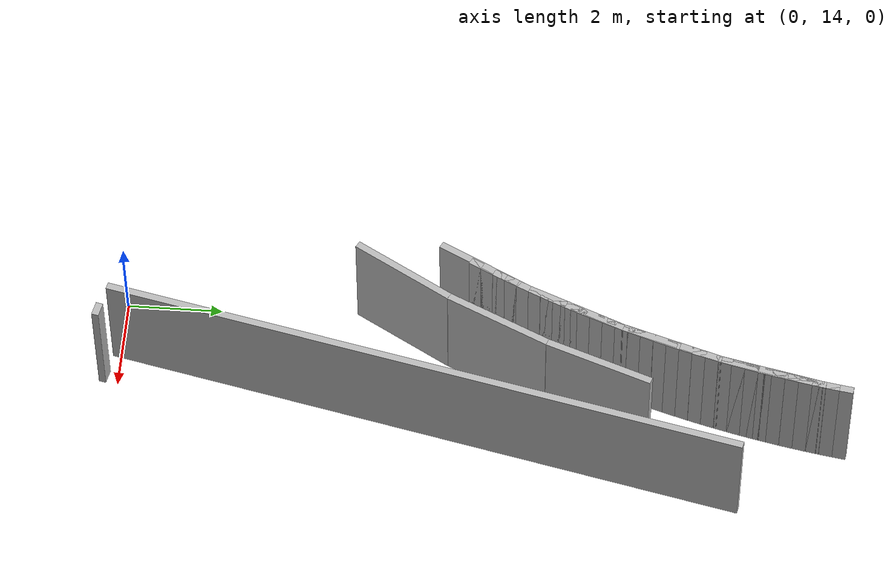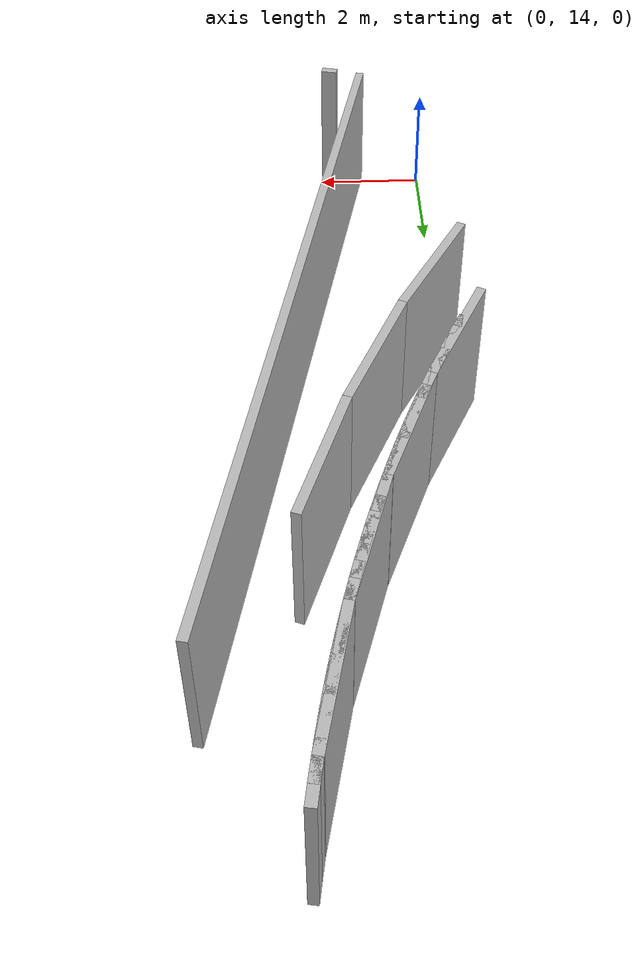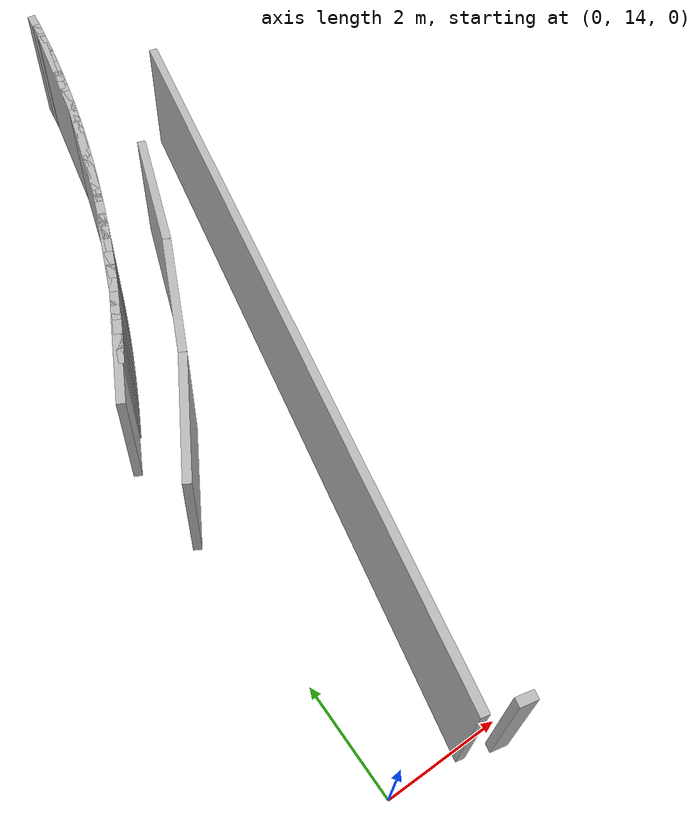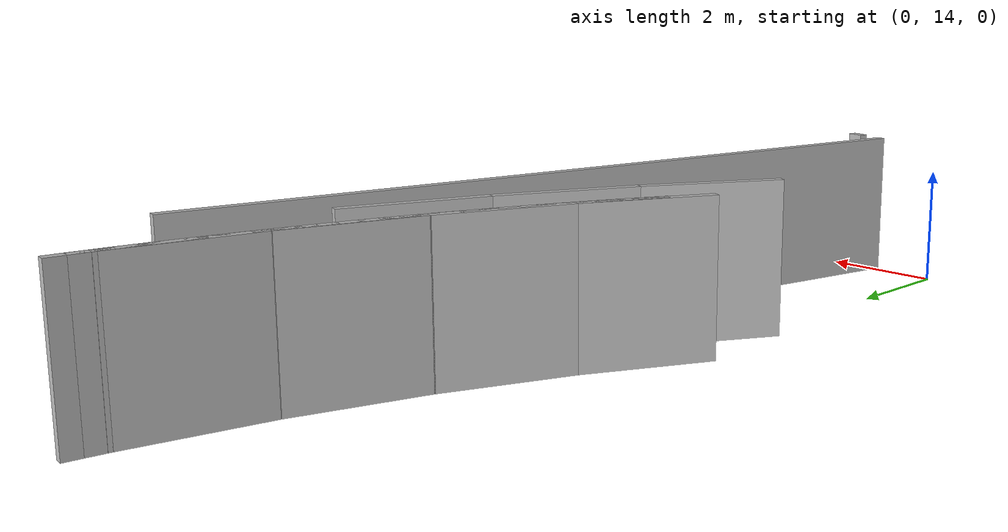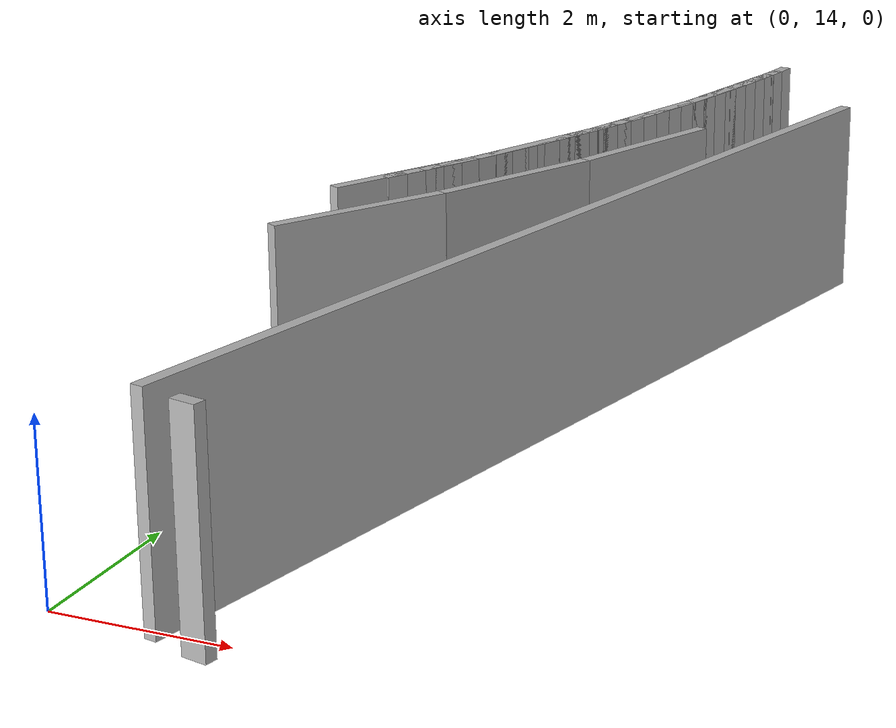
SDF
<sdf version="1.6">
 <model name="sps_2404">
  <static>1</static>
  <allow_auto_disable>0</allow_auto_disable>
  <link name="Wall2082">
   <collision name="collision"><geometry><box><size>0.299831 0.15 2.5</size></box></geometry></collision>
   <visual name="visual">
    <geometry><box><size>0.299831 0.15 2.5</size></box></geometry>
    <transparency>0.0</transparency>
   </visual>
   <pose>1.82156 13.711 1.25 0 0 -0.214363</pose>
  </link>
  <link name="Wall2404">
   <collision name="collision"><geometry><box><size>13.5967 0.15 2.5</size></box></geometry></collision>
   <visual name="visual">
    <geometry><box><size>13.5967 0.15 2.5</size></box></geometry>
    <transparency>0.0</transparency>
   </visual>
   <pose>2.66747 20.4844 1.25 0 0 -1.78507</pose>
  </link>
  <link name="Wall7775">
   <collision name="collision"><geometry><box><size>0.282444 0.15 2.5</size></box></geometry></collision>
   <visual name="visual">
    <geometry><box><size>0.282444 0.15 2.5</size></box></geometry>
    <transparency>0.0</transparency>
   </visual>
   <pose>2.60146 29.1647 1.25 0 0 -1.72308</pose>
  </link>
  <link name="Wall7776">
   <collision name="collision"><geometry><box><size>0.282361 0.15 2.5</size></box></geometry></collision>
   <visual name="visual">
    <geometry><box><size>0.282361 0.15 2.5</size></box></geometry>
    <transparency>0.0</transparency>
   </visual>
   <pose>2.55715 28.8858 1.25 0 0 -1.73364</pose>
  </link>
  <link name="Wall7777">
   <collision name="collision"><geometry><box><size>0.282483 0.15 2.5</size></box></geometry></collision>
   <visual name="visual">
    <geometry><box><size>0.282483 0.15 2.5</size></box></geometry>
    <transparency>0.0</transparency>
   </visual>
   <pose>2.50976 28.6074 1.25 0 0 -1.74518</pose>
  </link>
  <link name="Wall7778">
   <collision name="collision"><geometry><box><size>0.282417 0.15 2.5</size></box></geometry></collision>
   <visual name="visual">
    <geometry><box><size>0.282417 0.15 2.5</size></box></geometry>
    <transparency>0.0</transparency>
   </visual>
   <pose>2.45925 28.3295 1.25 0 0 -1.75598</pose>
  </link>
  <link name="Wall7779">
   <collision name="collision"><geometry><box><size>0.28242 0.15 2.5</size></box></geometry></collision>
   <visual name="visual">
    <geometry><box><size>0.28242 0.15 2.5</size></box></geometry>
    <transparency>0.0</transparency>
   </visual>
   <pose>2.40566 28.0522 1.25 0 0 -1.76743</pose>
  </link>
  <link name="Wall7780">
   <collision name="collision"><geometry><box><size>0.282315 0.15 2.5</size></box></geometry></collision>
   <visual name="visual">
    <geometry><box><size>0.282315 0.15 2.5</size></box></geometry>
    <transparency>0.0</transparency>
   </visual>
   <pose>2.34896 27.7756 1.25 0 0 -1.77854</pose>
  </link>
  <link name="Wall7781">
   <collision name="collision"><geometry><box><size>0.282331 0.15 2.5</size></box></geometry></collision>
   <visual name="visual">
    <geometry><box><size>0.282331 0.15 2.5</size></box></geometry>
    <transparency>0.0</transparency>
   </visual>
   <pose>2.28915 27.4997 1.25 0 0 -1.79003</pose>
  </link>
  <link name="Wall7782">
   <collision name="collision"><geometry><box><size>0.282266 0.15 2.5</size></box></geometry></collision>
   <visual name="visual">
    <geometry><box><size>0.282266 0.15 2.5</size></box></geometry>
    <transparency>0.0</transparency>
   </visual>
   <pose>2.22616 27.2245 1.25 0 0 -1.80161</pose>
  </link>
  <link name="Wall7783">
   <collision name="collision"><geometry><box><size>0.282446 0.15 2.5</size></box></geometry></collision>
   <visual name="visual">
    <geometry><box><size>0.282446 0.15 2.5</size></box></geometry>
    <transparency>0.0</transparency>
   </visual>
   <pose>2.16006 26.95 1.25 0 0 -1.81258</pose>
  </link>
  <link name="Wall7784">
   <collision name="collision"><geometry><box><size>0.282396 0.15 2.5</size></box></geometry></collision>
   <visual name="visual">
    <geometry><box><size>0.282396 0.15 2.5</size></box></geometry>
    <transparency>0.0</transparency>
   </visual>
   <pose>2.09084 26.6762 1.25 0 0 -1.82421</pose>
  </link>
  <link name="Wall7785">
   <collision name="collision"><geometry><box><size>0.282395 0.15 2.5</size></box></geometry></collision>
   <visual name="visual">
    <geometry><box><size>0.282395 0.15 2.5</size></box></geometry>
    <transparency>0.0</transparency>
   </visual>
   <pose>2.01855 26.4032 1.25 0 0 -1.83517</pose>
  </link>
  <link name="Wall7786">
   <collision name="collision"><geometry><box><size>0.282367 0.15 2.5</size></box></geometry></collision>
   <visual name="visual">
    <geometry><box><size>0.282367 0.15 2.5</size></box></geometry>
    <transparency>0.0</transparency>
   </visual>
   <pose>1.94305 26.1311 1.25 0 0 -1.84776</pose>
  </link>
  <link name="Wall7787">
   <collision name="collision"><geometry><box><size>0.28237 0.15 2.5</size></box></geometry></collision>
   <visual name="visual">
    <geometry><box><size>0.28237 0.15 2.5</size></box></geometry>
    <transparency>0.0</transparency>
   </visual>
   <pose>1.86446 25.8599 1.25 0 0 -1.85788</pose>
  </link>
  <link name="Wall7788">
   <collision name="collision"><geometry><box><size>0.282315 0.15 2.5</size></box></geometry></collision>
   <visual name="visual">
    <geometry><box><size>0.282315 0.15 2.5</size></box></geometry>
    <transparency>0.0</transparency>
   </visual>
   <pose>1.78298 25.5896 1.25 0 0 -1.86923</pose>
  </link>
  <link name="Wall7789">
   <collision name="collision"><geometry><box><size>0.282395 0.15 2.5</size></box></geometry></collision>
   <visual name="visual">
    <geometry><box><size>0.282395 0.15 2.5</size></box></geometry>
    <transparency>0.0</transparency>
   </visual>
   <pose>1.69848 25.3202 1.25 0 0 -1.88024</pose>
  </link>
  <link name="Wall7790">
   <collision name="collision"><geometry><box><size>0.282413 0.15 2.5</size></box></geometry></collision>
   <visual name="visual">
    <geometry><box><size>0.282413 0.15 2.5</size></box></geometry>
    <transparency>0.0</transparency>
   </visual>
   <pose>1.61095 25.0517 1.25 0 0 -1.89159</pose>
  </link>
  <link name="Wall7791">
   <collision name="collision"><geometry><box><size>0.282428 0.15 2.5</size></box></geometry></collision>
   <visual name="visual">
    <geometry><box><size>0.282428 0.15 2.5</size></box></geometry>
    <transparency>0.0</transparency>
   </visual>
   <pose>1.52035 24.7842 1.25 0 0 -1.90321</pose>
  </link>
  <link name="Wall7792">
   <collision name="collision"><geometry><box><size>0.282285 0.15 2.5</size></box></geometry></collision>
   <visual name="visual">
    <geometry><box><size>0.282285 0.15 2.5</size></box></geometry>
    <transparency>0.0</transparency>
   </visual>
   <pose>1.42675 24.5178 1.25 0 0 -1.91415</pose>
  </link>
  <link name="Wall7793">
   <collision name="collision"><geometry><box><size>0.282454 0.15 2.5</size></box></geometry></collision>
   <visual name="visual">
    <geometry><box><size>0.282454 0.15 2.5</size></box></geometry>
    <transparency>0.0</transparency>
   </visual>
   <pose>1.33013 24.2525 1.25 0 0 -1.9259</pose>
  </link>
  <link name="Wall7794">
   <collision name="collision"><geometry><box><size>0.28231 0.15 2.5</size></box></geometry></collision>
   <visual name="visual">
    <geometry><box><size>0.28231 0.15 2.5</size></box></geometry>
    <transparency>0.0</transparency>
   </visual>
   <pose>1.23043 23.9883 1.25 0 0 -1.93741</pose>
  </link>
  <link name="Wall7795">
   <collision name="collision"><geometry><box><size>0.282478 0.15 2.5</size></box></geometry></collision>
   <visual name="visual">
    <geometry><box><size>0.282478 0.15 2.5</size></box></geometry>
    <transparency>0.0</transparency>
   </visual>
   <pose>1.12783 23.7252 1.25 0 0 -1.94785</pose>
  </link>
  <link name="Wall7796">
   <collision name="collision"><geometry><box><size>0.282236 0.15 2.5</size></box></geometry></collision>
   <visual name="visual">
    <geometry><box><size>0.282236 0.15 2.5</size></box></geometry>
    <transparency>0.0</transparency>
   </visual>
   <pose>1.02233 23.4633 1.25 0 0 -1.95962</pose>
  </link>
  <link name="Wall7797">
   <collision name="collision"><geometry><box><size>0.282315 0.15 2.5</size></box></geometry></collision>
   <visual name="visual">
    <geometry><box><size>0.282315 0.15 2.5</size></box></geometry>
    <transparency>0.0</transparency>
   </visual>
   <pose>0.913841 23.2027 1.25 0 0 -1.97098</pose>
  </link>
  <link name="Wall7798">
   <collision name="collision"><geometry><box><size>0.282375 0.15 2.5</size></box></geometry></collision>
   <visual name="visual">
    <geometry><box><size>0.282375 0.15 2.5</size></box></geometry>
    <transparency>0.0</transparency>
   </visual>
   <pose>0.80236 22.9433 1.25 0 0 -1.98241</pose>
  </link>
  <link name="Wall7799">
   <collision name="collision"><geometry><box><size>0.282552 0.15 2.5</size></box></geometry></collision>
   <visual name="visual">
    <geometry><box><size>0.282552 0.15 2.5</size></box></geometry>
    <transparency>0.0</transparency>
   </visual>
   <pose>0.687858 22.6851 1.25 0 0 -1.99396</pose>
  </link>
  <link name="Wall7800">
   <collision name="collision"><geometry><box><size>0.282339 0.15 2.5</size></box></geometry></collision>
   <visual name="visual">
    <geometry><box><size>0.282339 0.15 2.5</size></box></geometry>
    <transparency>0.0</transparency>
   </visual>
   <pose>0.570548 22.4282 1.25 0 0 -2.00428</pose>
  </link>
  <link name="Wall7801">
   <collision name="collision"><geometry><box><size>0.282556 0.15 2.5</size></box></geometry></collision>
   <visual name="visual">
    <geometry><box><size>0.282556 0.15 2.5</size></box></geometry>
    <transparency>0.0</transparency>
   </visual>
   <pose>0.45034 22.1726 1.25 0 0 -2.01657</pose>
  </link>
  <link name="Wall7802">
   <collision name="collision"><geometry><box><size>0.2823 0.15 2.5</size></box></geometry></collision>
   <visual name="visual">
    <geometry><box><size>0.2823 0.15 2.5</size></box></geometry>
    <transparency>0.0</transparency>
   </visual>
   <pose>0.327232 21.9184 1.25 0 0 -2.0271</pose>
  </link>
  <link name="Wall7803">
   <collision name="collision"><geometry><box><size>0.282377 0.15 2.5</size></box></geometry></collision>
   <visual name="visual">
    <geometry><box><size>0.282377 0.15 2.5</size></box></geometry>
    <transparency>0.0</transparency>
   </visual>
   <pose>0.201347 21.6657 1.25 0 0 -2.03879</pose>
  </link>
  <link name="Wall7804">
   <collision name="collision"><geometry><box><size>0.282408 0.15 2.5</size></box></geometry></collision>
   <visual name="visual">
    <geometry><box><size>0.282408 0.15 2.5</size></box></geometry>
    <transparency>0.0</transparency>
   </visual>
   <pose>0.0725625 21.4144 1.25 0 0 -2.04991</pose>
  </link>
  <link name="Wall9496">
   <collision name="collision"><geometry><box><size>1.00887 0.15 2.5</size></box></geometry></collision>
   <visual name="visual">
    <geometry><box><size>1.00887 0.15 2.5</size></box></geometry>
    <transparency>0.0</transparency>
   </visual>
   <pose>2.38506 27.9739 1.25 0 -0 1.37085</pose>
  </link>
  <link name="Wall16885">
   <collision name="collision"><geometry><box><size>2.31533 0.15 2.5</size></box></geometry></collision>
   <visual name="visual">
    <geometry><box><size>2.31533 0.15 2.5</size></box></geometry>
    <transparency>0.0</transparency>
   </visual>
   <pose>0.357749 19.91 1.25 0 -0 1.04535</pose>
  </link>
  <link name="Wall16886">
   <collision name="collision"><geometry><box><size>2.31545 0.15 2.5</size></box></geometry></collision>
   <visual name="visual">
    <geometry><box><size>2.31545 0.15 2.5</size></box></geometry>
    <transparency>0.0</transparency>
   </visual>
   <pose>1.42785 21.9607 1.25 0 -0 1.13434</pose>
  </link>
  <link name="Wall16887">
   <collision name="collision"><geometry><box><size>2.3153 0.15 2.5</size></box></geometry></collision>
   <visual name="visual">
    <geometry><box><size>2.3153 0.15 2.5</size></box></geometry>
    <transparency>0.0</transparency>
   </visual>
   <pose>2.31136 24.0984 1.25 0 -0 1.22342</pose>
  </link>
  <link name="Wall32332">
   <collision name="collision"><geometry><box><size>0.282408 0.15 2.5</size></box></geometry></collision>
   <visual name="visual">
    <geometry><box><size>0.282408 0.15 2.5</size></box></geometry>
    <transparency>0.0</transparency>
   </visual>
   <pose>0.0725625 21.4144 1.25 0 -0 1.09168</pose>
  </link>
  <link name="Wall32333">
   <collision name="collision"><geometry><box><size>0.282377 0.15 2.5</size></box></geometry></collision>
   <visual name="visual">
    <geometry><box><size>0.282377 0.15 2.5</size></box></geometry>
    <transparency>0.0</transparency>
   </visual>
   <pose>0.201347 21.6657 1.25 0 -0 1.1028</pose>
  </link>
  <link name="Wall32334">
   <collision name="collision"><geometry><box><size>0.2823 0.15 2.5</size></box></geometry></collision>
   <visual name="visual">
    <geometry><box><size>0.2823 0.15 2.5</size></box></geometry>
    <transparency>0.0</transparency>
   </visual>
   <pose>0.327232 21.9184 1.25 0 -0 1.1145</pose>
  </link>
  <link name="Wall32335">
   <collision name="collision"><geometry><box><size>0.282556 0.15 2.5</size></box></geometry></collision>
   <visual name="visual">
    <geometry><box><size>0.282556 0.15 2.5</size></box></geometry>
    <transparency>0.0</transparency>
   </visual>
   <pose>0.45034 22.1726 1.25 0 -0 1.12502</pose>
  </link>
  <link name="Wall32336">
   <collision name="collision"><geometry><box><size>0.282416 0.15 2.5</size></box></geometry></collision>
   <visual name="visual">
    <geometry><box><size>0.282416 0.15 2.5</size></box></geometry>
    <transparency>0.0</transparency>
   </visual>
   <pose>0.57064 22.4282 1.25 0 -0 1.13673</pose>
  </link>
  <link name="Wall32337">
   <collision name="collision"><geometry><box><size>0.282476 0.15 2.5</size></box></geometry></collision>
   <visual name="visual">
    <geometry><box><size>0.282476 0.15 2.5</size></box></geometry>
    <transparency>0.0</transparency>
   </visual>
   <pose>0.687949 22.6851 1.25 0 -0 1.14823</pose>
  </link>
  <link name="Wall32338">
   <collision name="collision"><geometry><box><size>0.282375 0.15 2.5</size></box></geometry></collision>
   <visual name="visual">
    <geometry><box><size>0.282375 0.15 2.5</size></box></geometry>
    <transparency>0.0</transparency>
   </visual>
   <pose>0.80236 22.9433 1.25 0 -0 1.15918</pose>
  </link>
  <link name="Wall32339">
   <collision name="collision"><geometry><box><size>0.282315 0.15 2.5</size></box></geometry></collision>
   <visual name="visual">
    <geometry><box><size>0.282315 0.15 2.5</size></box></geometry>
    <transparency>0.0</transparency>
   </visual>
   <pose>0.913841 23.2027 1.25 0 -0 1.17062</pose>
  </link>
  <link name="Wall32340">
   <collision name="collision"><geometry><box><size>0.282236 0.15 2.5</size></box></geometry></collision>
   <visual name="visual">
    <geometry><box><size>0.282236 0.15 2.5</size></box></geometry>
    <transparency>0.0</transparency>
   </visual>
   <pose>1.02233 23.4633 1.25 0 -0 1.18198</pose>
  </link>
  <link name="Wall32341">
   <collision name="collision"><geometry><box><size>0.282478 0.15 2.5</size></box></geometry></collision>
   <visual name="visual">
    <geometry><box><size>0.282478 0.15 2.5</size></box></geometry>
    <transparency>0.0</transparency>
   </visual>
   <pose>1.12783 23.7252 1.25 0 -0 1.19374</pose>
  </link>
  <link name="Wall32342">
   <collision name="collision"><geometry><box><size>0.28231 0.15 2.5</size></box></geometry></collision>
   <visual name="visual">
    <geometry><box><size>0.28231 0.15 2.5</size></box></geometry>
    <transparency>0.0</transparency>
   </visual>
   <pose>1.23043 23.9883 1.25 0 -0 1.20418</pose>
  </link>
  <link name="Wall32343">
   <collision name="collision"><geometry><box><size>0.282454 0.15 2.5</size></box></geometry></collision>
   <visual name="visual">
    <geometry><box><size>0.282454 0.15 2.5</size></box></geometry>
    <transparency>0.0</transparency>
   </visual>
   <pose>1.33013 24.2525 1.25 0 -0 1.21569</pose>
  </link>
  <link name="Wall32344">
   <collision name="collision"><geometry><box><size>0.282285 0.15 2.5</size></box></geometry></collision>
   <visual name="visual">
    <geometry><box><size>0.282285 0.15 2.5</size></box></geometry>
    <transparency>0.0</transparency>
   </visual>
   <pose>1.42675 24.5178 1.25 0 -0 1.22744</pose>
  </link>
  <link name="Wall32345">
   <collision name="collision"><geometry><box><size>0.282428 0.15 2.5</size></box></geometry></collision>
   <visual name="visual">
    <geometry><box><size>0.282428 0.15 2.5</size></box></geometry>
    <transparency>0.0</transparency>
   </visual>
   <pose>1.52035 24.7842 1.25 0 -0 1.23838</pose>
  </link>
  <link name="Wall32346">
   <collision name="collision"><geometry><box><size>0.282413 0.15 2.5</size></box></geometry></collision>
   <visual name="visual">
    <geometry><box><size>0.282413 0.15 2.5</size></box></geometry>
    <transparency>0.0</transparency>
   </visual>
   <pose>1.61095 25.0517 1.25 0 -0 1.25</pose>
  </link>
  <link name="Wall32347">
   <collision name="collision"><geometry><box><size>0.282451 0.15 2.5</size></box></geometry></collision>
   <visual name="visual">
    <geometry><box><size>0.282451 0.15 2.5</size></box></geometry>
    <transparency>0.0</transparency>
   </visual>
   <pose>1.69857 25.3202 1.25 0 -0 1.26073</pose>
  </link>
  <link name="Wall32348">
   <collision name="collision"><geometry><box><size>0.282315 0.15 2.5</size></box></geometry></collision>
   <visual name="visual">
    <geometry><box><size>0.282315 0.15 2.5</size></box></geometry>
    <transparency>0.0</transparency>
   </visual>
   <pose>1.78316 25.5896 1.25 0 -0 1.27236</pose>
  </link>
  <link name="Wall32349">
   <collision name="collision"><geometry><box><size>0.282318 0.15 2.5</size></box></geometry></collision>
   <visual name="visual">
    <geometry><box><size>0.282318 0.15 2.5</size></box></geometry>
    <transparency>0.0</transparency>
   </visual>
   <pose>1.86455 25.8599 1.25 0 -0 1.28433</pose>
  </link>
  <link name="Wall32350">
   <collision name="collision"><geometry><box><size>0.282494 0.15 2.5</size></box></geometry></collision>
   <visual name="visual">
    <geometry><box><size>0.282494 0.15 2.5</size></box></geometry>
    <transparency>0.0</transparency>
   </visual>
   <pose>1.94295 26.1312 1.25 0 -0 1.29463</pose>
  </link>
  <link name="Wall32351">
   <collision name="collision"><geometry><box><size>0.282266 0.15 2.5</size></box></geometry></collision>
   <visual name="visual">
    <geometry><box><size>0.282266 0.15 2.5</size></box></geometry>
    <transparency>0.0</transparency>
   </visual>
   <pose>2.01845 26.4033 1.25 0 -0 1.30563</pose>
  </link>
  <link name="Wall32352">
   <collision name="collision"><geometry><box><size>0.282396 0.15 2.5</size></box></geometry></collision>
   <visual name="visual">
    <geometry><box><size>0.282396 0.15 2.5</size></box></geometry>
    <transparency>0.0</transparency>
   </visual>
   <pose>2.09084 26.6762 1.25 0 -0 1.31738</pose>
  </link>
  <link name="Wall32353">
   <collision name="collision"><geometry><box><size>0.282446 0.15 2.5</size></box></geometry></collision>
   <visual name="visual">
    <geometry><box><size>0.282446 0.15 2.5</size></box></geometry>
    <transparency>0.0</transparency>
   </visual>
   <pose>2.16006 26.95 1.25 0 -0 1.32901</pose>
  </link>
  <link name="Wall32354">
   <collision name="collision"><geometry><box><size>0.282266 0.15 2.5</size></box></geometry></collision>
   <visual name="visual">
    <geometry><box><size>0.282266 0.15 2.5</size></box></geometry>
    <transparency>0.0</transparency>
   </visual>
   <pose>2.22616 27.2245 1.25 0 -0 1.33998</pose>
  </link>
  <link name="Wall32355">
   <collision name="collision"><geometry><box><size>0.282331 0.15 2.5</size></box></geometry></collision>
   <visual name="visual">
    <geometry><box><size>0.282331 0.15 2.5</size></box></geometry>
    <transparency>0.0</transparency>
   </visual>
   <pose>2.28915 27.4997 1.25 0 -0 1.35156</pose>
  </link>
  <link name="Wall32356">
   <collision name="collision"><geometry><box><size>0.282494 0.15 2.5</size></box></geometry></collision>
   <visual name="visual">
    <geometry><box><size>0.282494 0.15 2.5</size></box></geometry>
    <transparency>0.0</transparency>
   </visual>
   <pose>2.34896 27.7757 1.25 0 -0 1.36319</pose>
  </link>
  <link name="Wall32357">
   <collision name="collision"><geometry><box><size>0.28224 0.15 2.5</size></box></geometry></collision>
   <visual name="visual">
    <geometry><box><size>0.28224 0.15 2.5</size></box></geometry>
    <transparency>0.0</transparency>
   </visual>
   <pose>2.40566 28.0523 1.25 0 -0 1.37404</pose>
  </link>
  <link name="Wall32358">
   <collision name="collision"><geometry><box><size>0.282417 0.15 2.5</size></box></geometry></collision>
   <visual name="visual">
    <geometry><box><size>0.282417 0.15 2.5</size></box></geometry>
    <transparency>0.0</transparency>
   </visual>
   <pose>2.45925 28.3295 1.25 0 -0 1.38561</pose>
  </link>
  <link name="Wall32359">
   <collision name="collision"><geometry><box><size>0.282483 0.15 2.5</size></box></geometry></collision>
   <visual name="visual">
    <geometry><box><size>0.282483 0.15 2.5</size></box></geometry>
    <transparency>0.0</transparency>
   </visual>
   <pose>2.50976 28.6074 1.25 0 -0 1.39641</pose>
  </link>
  <link name="Wall32360">
   <collision name="collision"><geometry><box><size>0.282401 0.15 2.5</size></box></geometry></collision>
   <visual name="visual">
    <geometry><box><size>0.282401 0.15 2.5</size></box></geometry>
    <transparency>0.0</transparency>
   </visual>
   <pose>2.55727 28.8858 1.25 0 -0 1.4071</pose>
  </link>
  <link name="Wall36661">
   <collision name="collision"><geometry><box><size>2.14554 0.15 2.5</size></box></geometry></collision>
   <visual name="visual">
    <geometry><box><size>2.14554 0.15 2.5</size></box></geometry>
    <transparency>0.0</transparency>
   </visual>
   <pose>0.142936 21.6005 1.25 0 -0 1.09949</pose>
  </link>
  <link name="Wall36662">
   <collision name="collision"><geometry><box><size>2.14539 0.15 2.5</size></box></geometry></collision>
   <visual name="visual">
    <geometry><box><size>2.14539 0.15 2.5</size></box></geometry>
    <transparency>0.0</transparency>
   </visual>
   <pose>1.03335 23.5503 1.25 0 -0 1.18533</pose>
  </link>
  <link name="Wall36663">
   <collision name="collision"><geometry><box><size>2.14537 0.15 2.5</size></box></geometry></collision>
   <visual name="visual">
    <geometry><box><size>2.14537 0.15 2.5</size></box></geometry>
    <transparency>0.0</transparency>
   </visual>
   <pose>1.75326 25.5692 1.25 0 -0 1.2712</pose>
  </link>
  <link name="Wall36664">
   <collision name="collision"><geometry><box><size>2.14543 0.15 2.5</size></box></geometry></collision>
   <visual name="visual">
    <geometry><box><size>2.14543 0.15 2.5</size></box></geometry>
    <transparency>0.0</transparency>
   </visual>
   <pose>2.29735 27.6424 1.25 0 -0 1.35709</pose>
  </link>
 </model>
</sdf>
